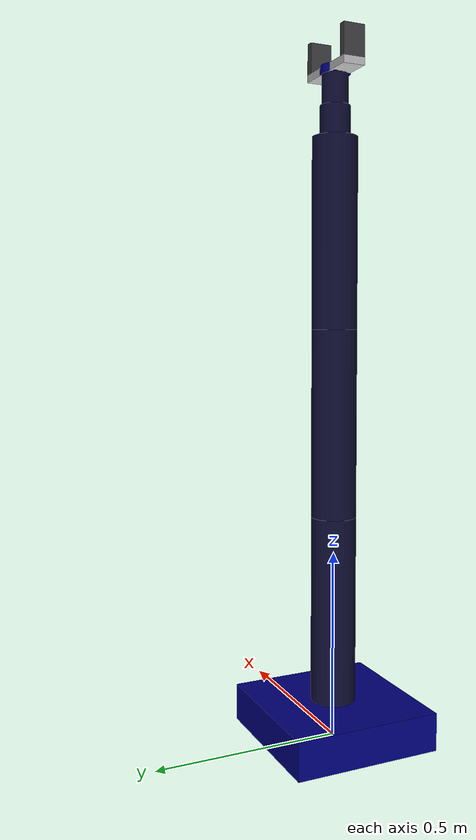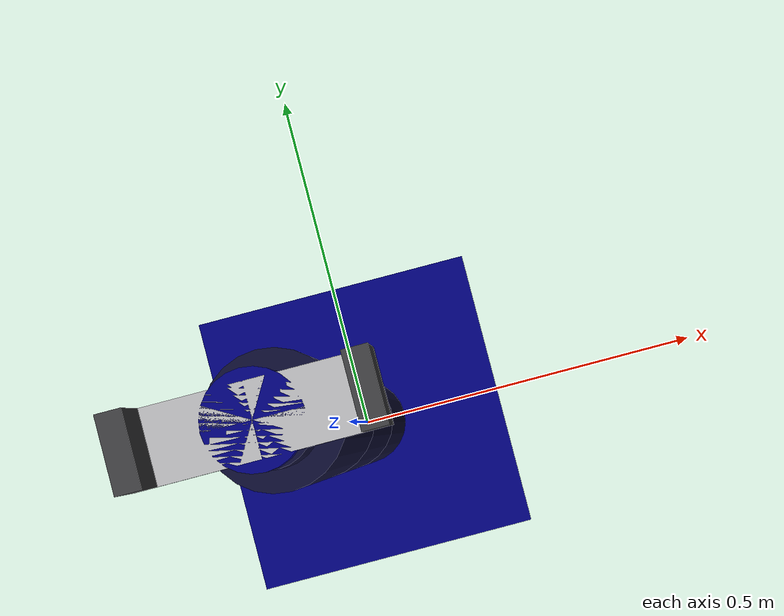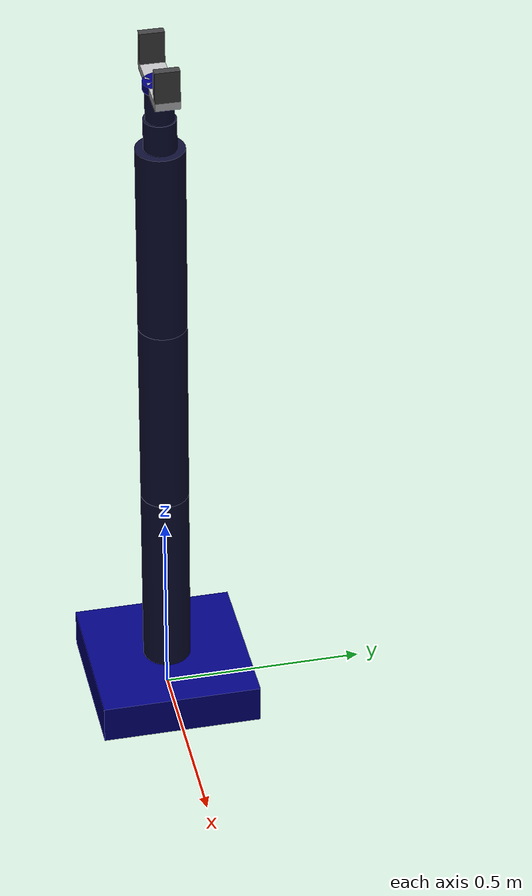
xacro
<?xml version="1.0"?>
<robot xmlns:xacro="http://www.ros.org/wiki/xacro" name="aero">
    <xacro:arg name="initial_positions_file" default="initial_positions.yaml" />

    <!-- Import aero urdf file -->
    <xacro:include filename="$(find aero_description)/urdf/aero.urdf.xacro" />

    <!-- Import control_xacro -->
    <xacro:include filename="aero.ros2_control.xacro" />

    <xacro:aero_ros2_control name="FakeSystem" initial_positions_file="$(arg initial_positions_file)"/>

</robot>

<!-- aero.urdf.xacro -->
<robot name="aero" xmlns:xacro="http://www.ros.org/wiki/xacro">

    <xacro:include filename="common_properties.xacro"/>
    <xacro:include filename="arm.xacro"/>
    <xacro:include filename="gripper.xacro"/>

    <joint name="gripper_joint" type="fixed">
        <parent link="tool_flange_link"/>
        <child link="gripper_base_link"/>
        <origin xyz="0 0 0" rpy="0 0 0"/>
    </joint>

</robot>

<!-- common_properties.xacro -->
<robot xmlns:xacro="http://www.ros.org/wiki/xacro">

    <material name="blue">
        <color rgba="0 0 0.5 1"/>
    </material>

    <material name="matte_black">
        <color rgba="0.05 0.05 0.2 1.0"/>
    </material>

    <material name="grey">
        <color rgba="0.25 0.25 0.26 1"/>
    </material>

    <material name="light_grey">
        <color rgba="0.75 0.75 0.76 1"/>
    </material>

</robot>

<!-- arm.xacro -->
<robot xmlns:xacro="http://www.ros.org/wiki/xacro">

    <link name="base_link">
        <visual>
            <geometry>
                <box size="0.4 0.4 0.1"/>
            </geometry>
            <origin xyz="0 0 0.05" rpy="0 0 0"/>
            <material name="blue"/>
        </visual>
        <collision>
            <geometry>
                <box size="0.4 0.4 0.1"/>
            </geometry>
            <origin xyz="0 0 0.05" rpy="0 0 0"/>
        </collision>
    </link>

    <joint name="shoulder_yaw_joint" type="revolute">
        <parent link="base_link"/>
        <child link="shoulder_link"/>
        <origin xyz="0 0 0.1" rpy="0 0 0"/>
        <axis xyz="0 0 1" />
        <limit effort="1000.0" velocity="1.0" lower="-3.14" upper="3.14"/>
    </joint>

    <link name="shoulder_link">
        <visual>
            <geometry>
                <cylinder length="0.5" radius="0.06"/>
            </geometry>
            <origin xyz="0 0 0.25" rpy="0 0 0"/>
            <material name="matte_black"/>
        </visual>
        <collision>
            <geometry>
                <cylinder length="0.5" radius="0.06"/>
            </geometry>
            <origin xyz="0 0 0.25" rpy="0 0 0"/>
        </collision>
    </link>

    <joint name="shoulder_pitch_joint" type="revolute">
        <parent link="shoulder_link"/>
        <child link="upper_arm_link"/>
        <origin xyz="0 0 0.5" rpy="0 0 0"/>
        <axis xyz="0 1 0" />
        <limit effort="1000.0" velocity="1.0" lower="-1.57" upper="1.57"/>
    </joint>

    <link name="upper_arm_link">
        <visual>
            <geometry>
                <cylinder length="0.5" radius="0.06"/>
            </geometry>
            <origin xyz="0 0 0.25" rpy="0 0 0"/>
            <material name="matte_black"/>
        </visual>
        <collision>
            <geometry>
                <cylinder length="0.5" radius="0.06"/>
            </geometry>
            <origin xyz="0 0 0.25" rpy="0 0 0"/>
        </collision>
    </link>

    <joint name="elbow_joint" type="revolute">
        <parent link="upper_arm_link"/>
        <child link="forearm_link"/>
        <origin xyz="0 0 0.5" rpy="0 0 0"/>
        <axis xyz="0 1 0" />
        <limit effort="1000.0" velocity="1.0" lower="-1.57" upper="1.57"/>
    </joint>

    <link name="forearm_link">
        <visual>
            <geometry>
                <cylinder length="0.5" radius="0.06"/>
            </geometry>
            <origin xyz="0 0 0.25" rpy="0 0 0"/>
            <material name="matte_black"/>
        </visual>
        <collision>
            <geometry>
                <cylinder length="0.5" radius="0.06"/>
            </geometry>
            <origin xyz="0 0 0.25" rpy="0 0 0"/>
        </collision>
    </link>

    <joint name="wrist_yaw_joint" type="revolute">
        <parent link="forearm_link"/>
        <child link="wrist_yaw_link"/>
        <origin xyz="0 0 0.5" rpy="0 0 0"/>
        <axis xyz="0 0 1" />
        <limit effort="100.0" velocity="2.0" lower="-3.14" upper="3.14"/>
    </joint>

    <link name="wrist_yaw_link">
        <visual>
            <geometry>
                <cylinder length="0.08" radius="0.04"/>
            </geometry>
            <origin xyz="0 0 0.04" rpy="0 0 0"/>
            <material name="matte_black"/>
        </visual>
        <collision>
            <geometry>
                <cylinder length="0.08" radius="0.04"/>
            </geometry>
            <origin xyz="0 0 0.04" rpy="0 0 0"/>
        </collision>
    </link>

    <joint name="wrist_pitch_joint" type="revolute">
        <parent link="wrist_yaw_link"/>
        <child link="wrist_pitch_link"/>
        <origin xyz="0 0 0.08" rpy="0 0 0"/>
        <axis xyz="0 1 0" />
        <limit effort="100.0" velocity="2.0" lower="-1.57" upper="1.57"/>
    </joint>

    <link name="wrist_pitch_link">
        <visual>
            <geometry>
                <cylinder length="0.08" radius="0.035"/>
            </geometry>
            <origin xyz="0 0 0.04" rpy="0 0 0"/>
            <material name="matte_black"/>
        </visual>
        <collision>
            <geometry>
                <cylinder length="0.08" radius="0.035"/>
            </geometry>
            <origin xyz="0 0 0.04" rpy="0 0 0"/>
        </collision>
    </link>

    <joint name="wrist_roll_joint" type="revolute">
        <parent link="wrist_pitch_link"/>
        <child link="tool_flange_link"/>
        <origin xyz="0 0 0.08" rpy="0 0 0"/>
        <axis xyz="1 0 0" />
        <limit effort="100.0" velocity="2.0" lower="-3.14" upper="3.14"/>
    </joint>

    <link name="tool_flange_link">
        <visual>
            <geometry>
                <cylinder length="0.02" radius="0.04"/> </geometry>
            <origin xyz="0 0 0.01" rpy="0 0 0"/> <material name="blue"/> </visual>
        <collision>
            <geometry>
                <cylinder length="0.02" radius="0.04"/> </geometry>
            <origin xyz="0 0 0.01" rpy="0 0 0"/> </collision>
    </link>

</robot>

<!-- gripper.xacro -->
<robot xmlns:xacro="http://www.ros.org/wiki/xacro">

    <link name="gripper_base_link">
        <visual>
            <geometry>
                <box size="0.2 0.06 0.02"/>
            </geometry>
            <origin xyz="0 0 0.01" rpy="0 0 0"/>
            <material name="light_grey"/>
        </visual>
        <collision>
            <geometry>
                <box size="0.2 0.06 0.02"/>
            </geometry>
            <origin xyz="0 0 0.01" rpy="0 0 0"/>
        </collision>
    </link>

    <joint name="gripper_left_finger_joint" type="prismatic">
        <parent link="gripper_base_link"/>
        <child link="gripper_left_finger_link"/>
        <origin xyz="-0.09 0 0.01" rpy="0 0 0"/>
        <axis xyz="1 0 0"/>
        <limit lower="0.0" upper="0.08" effort="1000.0" velocity="1.0"/>
    </joint>

    <link name="gripper_left_finger_link">
        <visual>
            <geometry>
                <box size="0.02 0.06 0.08"/>
            </geometry>
            <origin xyz="0 0 0.05" rpy="0 0 0"/>
            <material name="grey"/>
        </visual>
        <collision>
            <geometry>
                <box size="0.02 0.06 0.08"/>
            </geometry>
            <origin xyz="0 0 0.05" rpy="0 0 0"/>
        </collision>
    </link>

    <joint name="gripper_right_finger_joint" type="prismatic">
        <parent link="gripper_base_link"/>
        <child link="gripper_right_finger_link"/>
        <origin xyz="0.09 0 0.01" rpy="0 0 0"/>
        <axis xyz="-1 0 0"/>
        <mimic joint="gripper_left_finger_joint" multiplier="1.0" offset="0.0"/>
        <limit lower="0.0" upper="0.08" effort="1000.0" velocity="1.0"/>
    </joint>

    <link name="gripper_right_finger_link">
        <visual>
            <geometry>
                <box size="0.02 0.06 0.08"/>
            </geometry>
            <origin xyz="0 0 0.05" rpy="0 0 0"/>
            <material name="grey"/>
        </visual>
        <collision>
            <geometry>
                <box size="0.02 0.06 0.08"/>
            </geometry>
            <origin xyz="0 0 0.05" rpy="0 0 0"/>
        </collision>
    </link>
</robot>
